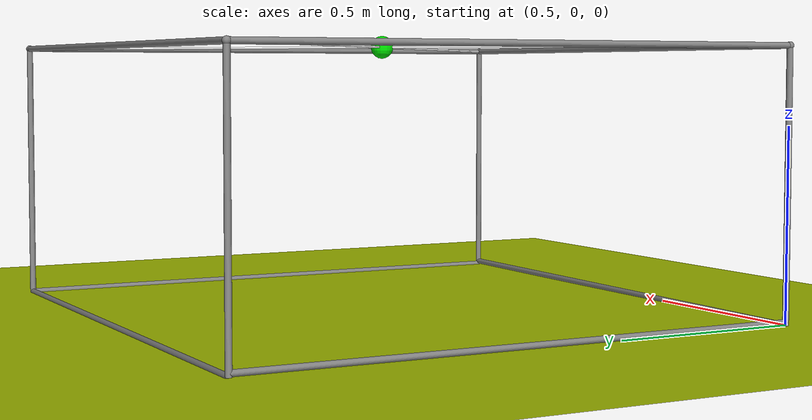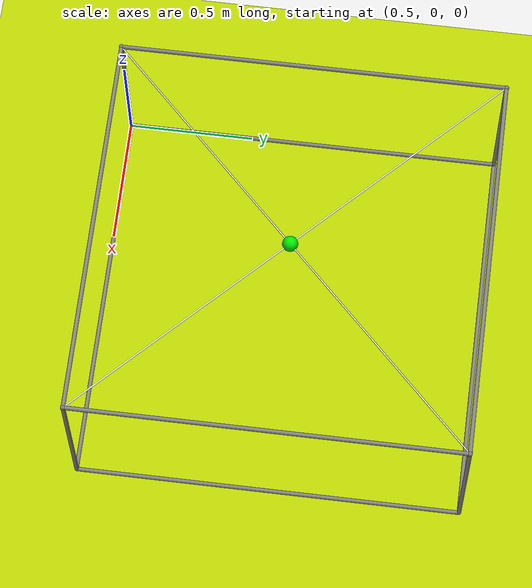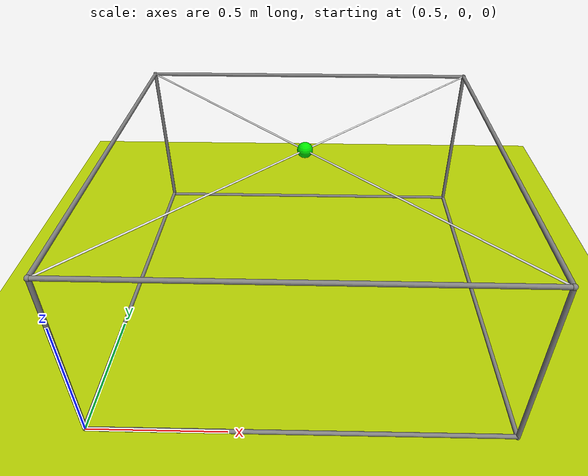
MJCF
<mujoco model="sphereCDPR_2D">
   <compiler inertiafromgeom="auto" coordinate="local" />
    <option gravity="0 0 0" timestep="0.01" integrator="RK4" solver="Newton" />

   <asset>
        <texture name="ground_tex" type="2d" builtin="checker" rgb1="0.8 0.8 0.8" rgb2="0.6 0.6 0.6" width="100" height="100" />
        <material name="collision_mat" />
        <texture type="skybox" builtin="gradient" rgb1=".3 .5 .7" rgb2="0 0 0" width="512" height="512"/>
        <texture name="body" type="cube" builtin="flat" mark="cross" width="127" height="1278"
             rgb1="0.8 0.6 0.4" rgb2="0.8 0.6 0.4" markrgb="1 1 1" random="0.01"/>
        <material name="body" texture="body" texuniform="true" rgba="0.8 0.6 .4 1"/>
        <texture name="grid" type="2d" builtin="checker" width="512" height="512" rgb1=".1 .2 .3" rgb2=".2 .3 .4"/>
        <material name="grid" texture="grid" texrepeat="1 1" texuniform="true" reflectance=".2"/>
    </asset>

    <visual>
    <map force="0.1" zfar="30"/>
    <rgba haze="0.15 0.25 0.35 1"/>
    <quality shadowsize="4096"/>
    <global offwidth="800" offheight="800"/>
  </visual>

   <worldbody>

      <geom type="plane" size="10 10 0.1" rgba="0.7 0.8 0 0.7" friction="1 0.005" material="grid" condim="3"/>
      <light name="spotlight" mode="targetbodycom"
      	target="end_effector" diffuse=".8 .8 .8" specular="0.3 0.3 0.3" pos="0 -20 4" cutoff="10"/>
      <camera pos="0.869 0.320 5.842" xyaxes="1.000 -0.018 -0.000 0.018 0.998 0.054"/>
      <body name="end_effector" pos="1.25 0.75 0.7">
         <joint type="free"/>
         <geom type="sphere" size=".03" rgba="0 .9 0 1" material="collision_mat" friction="1 0.005" mass="0.5" condim="1"/>
         <light name="top" pos="0 0 2" mode="trackcom"/>
         <site name="endB0" pos="0.0 0.0 0.0" type="sphere" size="0.001"/>
      </body>
      <body pos="0 0 0">
         <geom type="cylinder" fromto="0.5 0 0.7  0.5 0 0" size="0.008"/>
         <site name="endC0" pos="0.5 0 0.7" type="sphere" size="0.01"/>
         <body>
            <geom type="cylinder" fromto="0.5 0 0.008  0.5 1.5 0.008" size="0.008"/>
            <body>
               <geom type="cylinder" fromto="0.5 1.5 0.7  0.5 1.5 0" size="0.008"/>
               <site name="endC2" pos="0.5 1.5 0.7" type="sphere" size="0.01"/>
               <body>
                  <geom type="cylinder" fromto="0.5 1.5 0.7  2 1.5 0.7" size="0.008"/>
                  <geom type="cylinder" fromto="0.5 1.5 0  2 1.5 0" size="0.008"/>
               </body>
            </body>
         </body>
         <body>
            <geom type="cylinder" fromto="0.5 0 0.7  2 0 0.7" size="0.008"/>
         </body>
         <body>
            <geom type="cylinder" fromto="0.5 0 0.7  0.5 1.5 0.7" size="0.008"/>
         </body>
         <body>
            <geom type="cylinder" fromto="0.5 0 0  2 0 0.008" size="0.008"/>
            <body>
               <geom type="cylinder" fromto="2 0 0.7  2 0 0" size="0.008"/>
               <body>
                  <geom type="cylinder" fromto="2 0 0.7  2 1.5 0.7" size="0.008"/>
                  <geom type="cylinder" fromto="2 0 0  2 1.5 0" size="0.008"/>
                  <site name="endC4" pos="2 0 0.7" type="sphere" size="0.01"/>
                  <body>
                     <geom type="cylinder" fromto="2 1.5 0.7  2 1.5 0" size="0.008"/>
                     <site name="endC6" pos="2 1.5 0.7" type="sphere" size="0.01"/>
                  </body>
               </body>
            </body>
         </body>
      </body>
   </worldbody>
   <tendon>
        <spatial name="Wt" limited="true" range="0 0.9" width="0.003" material="collision_mat">
            <site site="endC0"/>
            <site site="endB0"/>
        </spatial>
        <spatial name="Wb" limited="true" range="0 0.9" width="0.003" material="collision_mat">
            <site site="endC2"/>
            <site site="endB0"/>
        </spatial>
        <spatial name="Et" limited="true" range="0 0.9" width="0.003" material="collision_mat">
            <site site="endC4"/>
            <site site="endB0"/>
        </spatial>
        <spatial name="Eb" limited="true" range="0 0.9" width="0.003" material="collision_mat">
            <site site="endC6"/>
            <site site="endB0"/>
        </spatial>
    </tendon>
    <actuator>
        <motor name="Wt" tendon="Wt" gear="30000"/>
        <motor name="Wb" tendon="Wb" gear="30000"/>
        <motor name="Et" tendon="Et" gear="30000"/>
        <motor name="Eb" tendon="Eb" gear="30000"/>
    </actuator>
</mujoco>
